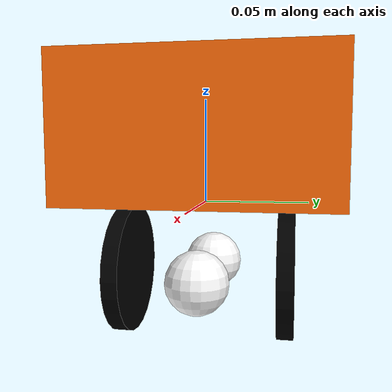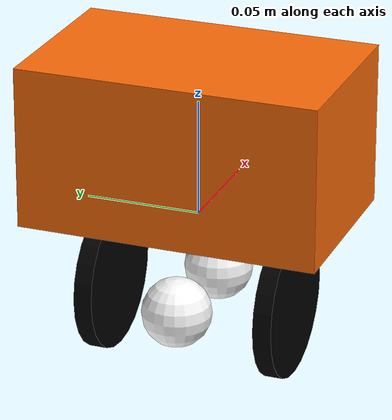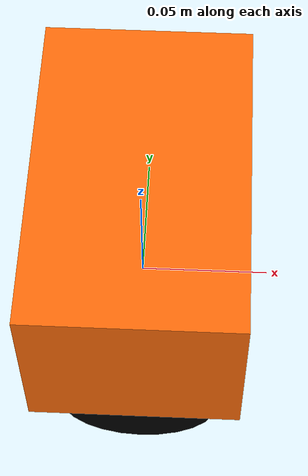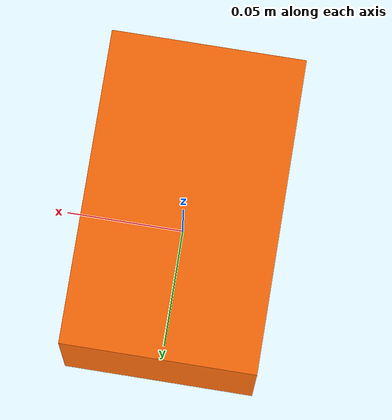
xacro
<?xml version="1.0"?>
<!-- Copied from https://github.com/ros-controls/ros2_control_demos -->
<!-- Basic differential drive mobile base -->
<robot xmlns:xacro="http://www.ros.org/wiki/xacro" name="diffdrive_robot">
  <xacro:arg name="prefix" default="" />
  <xacro:arg name="use_mock_hardware" default="false" />

  <xacro:include filename="$(find pca9685_ros2_control_example)/description/diffbot_description.urdf.xacro" />

  <!-- Import Rviz colors -->
  <xacro:include filename="$(find pca9685_ros2_control_example)/description/diffbot.materials.xacro" />

  <!-- Import diffbot ros2_control description -->
  <xacro:include filename="$(find pca9685_ros2_control_example)/description/diffbot.ros2_control.xacro" />

  <xacro:diffbot prefix="$(arg prefix)" />

  <xacro:diffbot_ros2_control
    name="DiffBot" prefix="$(arg prefix)" use_mock_hardware="$(arg use_mock_hardware)"/>

</robot>

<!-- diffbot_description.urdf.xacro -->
<!-- Copied from https://github.com/ros-controls/ros2_control_demos -->
<robot xmlns:xacro="http://www.ros.org/wiki/xacro">

  <xacro:macro name="diffbot" params="prefix">

  <!-- Constants for robot dimensions -->
  <xacro:property name="PI" value="3.1415926535897931"/>
  <xacro:property name="base_mass" value="0.3" /> <!-- arbitrary value for base mass -->
  <xacro:property name="base_width" value="0.08" />
  <xacro:property name="base_length" value="0.13" />
  <xacro:property name="base_height" value="0.07" />
  <xacro:property name="wheel_mass" value="0.3" /> <!-- arbitrary value for wheel mass -->
  <xacro:property name="wheel_len" value="0.008" />
  <xacro:property name="wheel_radius" value="0.032" />
  <xacro:property name="caster_wheel_mass" value="0.1" /> <!-- arbitrary value for caster wheel mass -->
  <xacro:property name="caster_wheel_radius" value="0.015" />
  <xacro:property name="z_offset" value="-${base_height/2}" /> <!-- Space btw top of beam and the each joint -->

  <!-- Base Link -->
  <link name="${prefix}base_link">
    <collision>
      <origin xyz="0 0 0" rpy="0 0 0"/>
      <geometry>
        <box size="${base_width} ${base_length} ${base_height}"/>
      </geometry>
    </collision>

    <visual>
      <origin xyz="0 0 ${base_height/2}" rpy="0 0 0"/>
      <geometry>
        <box size="${base_width} ${base_length} ${base_height}"/>
      </geometry>
      <material name="orange"/>
    </visual>

    <inertial>
      <origin xyz="0 0 0" rpy="0 0 0"/>
      <mass value="${base_mass}"/>
      <inertia
        ixx="${base_mass / 12.0 * (base_length*base_length + base_height*base_height)}" ixy="0.0" ixz="0.0"
        iyy="${base_mass / 12.0 * (base_height*base_height + base_width*base_width)}" iyz="0.0"
        izz="${base_mass / 12.0 * (base_width*base_width + base_length*base_length)}"/>
      </inertial>
    </link>

    <joint name="${prefix}left_wheel_joint" type="continuous">
      <parent link="${prefix}base_link"/>
      <child link="${prefix}left_wheel"/>
      <origin xyz="0 -${base_width/2} ${z_offset}" rpy="0 0 0"/>
      <axis xyz="0 1 0"/>
      <dynamics damping="0.2"/>
      <limit effort="100" velocity="1.0"/>
    </joint>

    <!-- left wheel Link -->
    <link name="${prefix}left_wheel">
      <collision>
        <origin xyz="0 0 0" rpy="${PI/2} 0 0"/>
        <geometry>
          <cylinder length="${wheel_len}" radius="${wheel_radius}"/>
        </geometry>
      </collision>

      <visual>
        <origin xyz="0 0 0" rpy="${PI/2} 0 0"/>
        <geometry>
          <cylinder length="${wheel_len}" radius="${wheel_radius}"/>
        </geometry>
        <material name="black"/>
      </visual>

      <inertial>
        <origin xyz="0 0 0" rpy="${PI/2} 0 0"/>
        <mass value="${wheel_mass}"/>
        <inertia
          ixx="${wheel_mass / 12.0 * (3*wheel_radius*wheel_radius + wheel_len*wheel_len)}" ixy="0.0" ixz="0.0"
          iyy="${wheel_mass / 12.0 * (3*wheel_radius*wheel_radius + wheel_len*wheel_len)}" iyz="0.0"
          izz="${wheel_mass / 2.0 * wheel_radius*wheel_radius}"/>
        </inertial>
      </link>

    <joint name="${prefix}right_wheel_joint" type="continuous">
      <parent link="${prefix}base_link"/>
      <child link="${prefix}right_wheel"/>
      <origin xyz="0 ${base_width/2} ${z_offset}" rpy="0 0 0"/>
      <axis xyz="0 1 0"/>
      <dynamics damping="0.2"/>
      <limit effort="100" velocity="1.0"/>
    </joint>

    <!-- right wheel Link -->
    <link name="${prefix}right_wheel">
      <collision>
        <origin xyz="0 0 0" rpy="${PI/2} 0 0"/>
        <geometry>
          <cylinder length="${wheel_len}" radius="${wheel_radius}"/>
        </geometry>
      </collision>

      <visual>
        <origin xyz="0 0 0" rpy="${PI/2} 0 0"/>
        <geometry>
          <cylinder length="${wheel_len}" radius="${wheel_radius}"/>
        </geometry>
        <material name="black"/>
      </visual>

      <inertial>
        <origin xyz="0 0 0" rpy="${PI/2} 0 0"/>
        <mass value="${wheel_mass}"/>
        <inertia
          ixx="${wheel_mass / 12.0 * (3*wheel_radius*wheel_radius + wheel_len*wheel_len)}" ixy="0.0" ixz="0.0"
          iyy="${wheel_mass / 12.0 * (3*wheel_radius*wheel_radius + wheel_len*wheel_len)}" iyz="0.0"
          izz="${wheel_mass / 2.0 * wheel_radius*wheel_radius}"/>
        </inertial>
      </link>

    <joint name="${prefix}caster_frontal_wheel_joint" type="fixed">
      <parent link="${prefix}base_link"/>
      <child link="${prefix}caster_frontal_wheel"/>
      <origin xyz="${base_width/2 - caster_wheel_radius} 0 ${z_offset}" rpy="0 0 0"/>
    </joint>

    <!-- caster frontal wheel Link -->
    <link name="${prefix}caster_frontal_wheel">
      <collision>
        <origin xyz="0 0 0" rpy="0 0 0"/>
        <geometry>
          <sphere radius="${caster_wheel_radius}"/>
        </geometry>
      </collision>

      <visual>
        <origin xyz="0 0 0" rpy="0 0 0"/>
        <geometry>
          <sphere radius="${caster_wheel_radius}"/>
        </geometry>
        <material name="white"/>
      </visual>

      <inertial>
        <origin xyz="0 0 0" rpy="0 0 0"/>
        <mass value="${caster_wheel_mass}"/>
        <inertia
          ixx="${caster_wheel_mass * 0.4 * (caster_wheel_radius * caster_wheel_radius)}" ixy="0.0" ixz="0.0"
          iyy="${caster_wheel_mass * 0.4 * (caster_wheel_radius * caster_wheel_radius)}" iyz="0.0"
          izz="${caster_wheel_mass * 0.4 * (caster_wheel_radius * caster_wheel_radius)}"/>
        </inertial>
      </link>

    <joint name="${prefix}caster_rear_wheel_joint" type="fixed">
      <parent link="${prefix}base_link"/>
      <child link="${prefix}caster_rear_wheel"/>
      <origin xyz="${-base_width/2 + caster_wheel_radius} 0 ${z_offset}" rpy="0 0 0"/>
    </joint>

    <!-- caster rear wheel Link -->
    <link name="${prefix}caster_rear_wheel">
      <collision>
        <origin xyz="0 0 0" rpy="0 0 0"/>
        <geometry>
          <sphere radius="${caster_wheel_radius}"/>
        </geometry>
      </collision>

      <visual>
        <origin xyz="0 0 0" rpy="0 0 0"/>
        <geometry>
          <sphere radius="${caster_wheel_radius}"/>
        </geometry>
        <material name="white"/>
      </visual>

      <inertial>
        <origin xyz="0 0 0" rpy="0 0 0"/>
        <mass value="${caster_wheel_mass}"/>
        <inertia
          ixx="${caster_wheel_mass * 0.4 * (caster_wheel_radius * caster_wheel_radius)}" ixy="0.0" ixz="0.0"
          iyy="${caster_wheel_mass * 0.4 * (caster_wheel_radius * caster_wheel_radius)}" iyz="0.0"
          izz="${caster_wheel_mass * 0.4 * (caster_wheel_radius * caster_wheel_radius)}"/>
        </inertial>
      </link>

  </xacro:macro>

</robot>

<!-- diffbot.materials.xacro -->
<!-- Copied from https://github.com/ros-controls/ros2_control_demos -->
<!--
Copied from ROS1 example:
https://github.com/ros-simulation/gazebo_ros_demos/blob/kinetic-devel/rrbot_description/urdf/materials.xacro
-->
<robot>

  <material name="black">
    <color rgba="0.0 0.0 0.0 1.0"/>
  </material>

  <material name="blue">
    <color rgba="0.0 0.0 0.8 1.0"/>
  </material>

  <material name="green">
    <color rgba="0.0 0.8 0.0 1.0"/>
  </material>

  <material name="grey">
    <color rgba="0.2 0.2 0.2 1.0"/>
  </material>

  <material name="orange">
    <color rgba="${255/255} ${108/255} ${10/255} 1.0"/>
  </material>

  <material name="brown">
    <color rgba="${222/255} ${207/255} ${195/255} 1.0"/>
  </material>

  <material name="red">
    <color rgba="0.8 0.0 0.0 1.0"/>
  </material>

  <material name="white">
    <color rgba="1.0 1.0 1.0 1.0"/>
  </material>

</robot>
